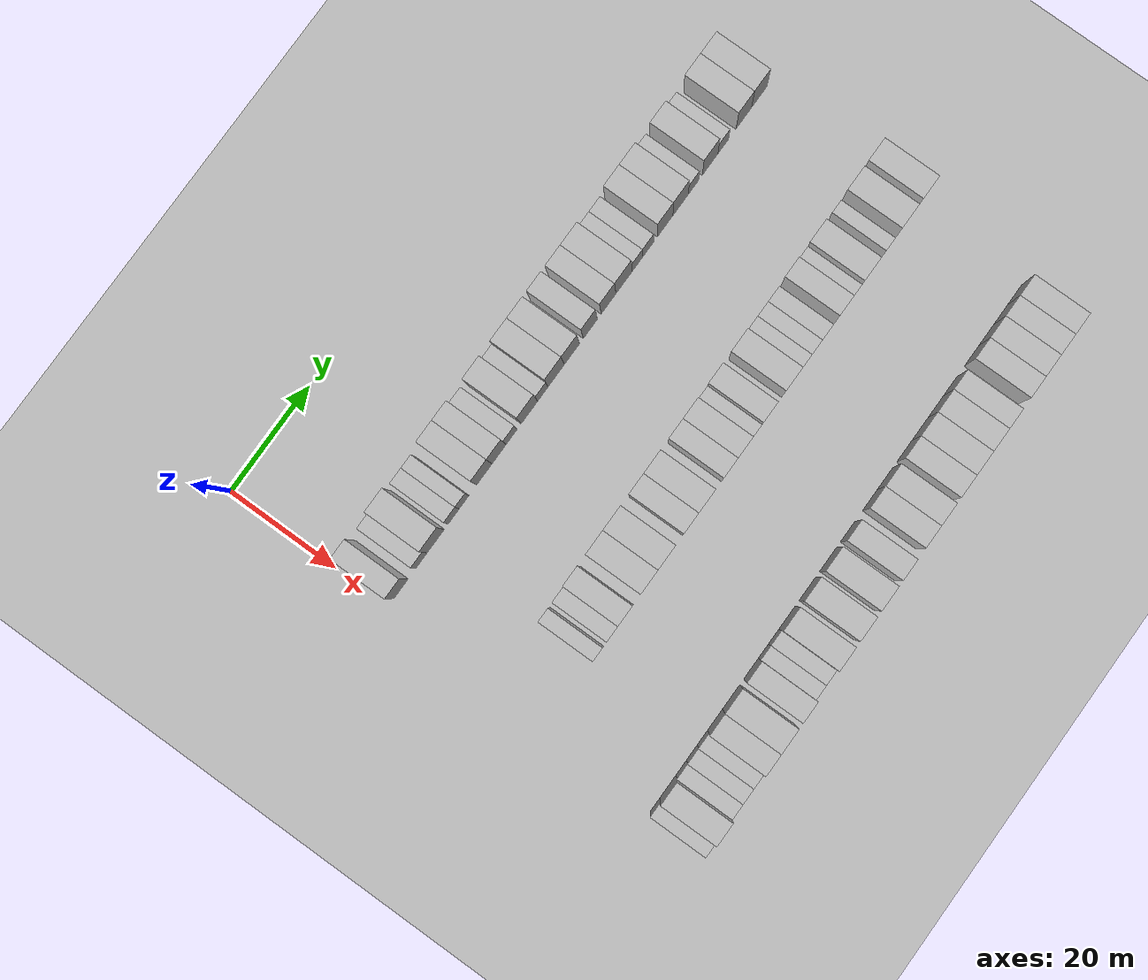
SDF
<sdf version="1.6">
 <world name="default">
  <include><name>ground_plane_1</name><uri>model://HANNAS_ground_plane</uri></include>
  <include>
   <name>ground_plane_2</name>
   <uri>model://HANNAS_ground_plane</uri>
   <pose>100 0 0  0 0 0</pose>
  </include>
  <model name="building_74">
   <static>1</static>
   <pose>25.0000 3.4079 0 0.000000 0.000000 0.000000</pose>
   <link name="link">
    <pose>0 0 4.50 0 0 0</pose>
    <collision name="collision"><geometry><box><size>10.0000 3.6142 9.0000</size></box></geometry></collision>
    <visual name="visual">
     <cast_shadows>0</cast_shadows>
     <geometry><box><size>10.0000 3.6142 9.0000</size></box></geometry>
     <material>
      <script>
       <uri>model://HANNAS_wall/materials/scripts</uri>
       <uri>model://HANNAS_wall/materials/textures</uri>
       <name>vrc/HANNAS_wall</name>
      </script>
     </material>
    </visual>
   </link>
  </model>
  <model name="building_75">
   <static>1</static>
   <pose>25.0000 8.6435 0 0.000000 0.000000 0.000000</pose>
   <link name="link">
    <pose>0 0 3.00 0 0 0</pose>
    <collision name="collision"><geometry><box><size>10.0000 2.8570 6.0000</size></box></geometry></collision>
    <visual name="visual">
     <cast_shadows>0</cast_shadows>
     <geometry><box><size>10.0000 2.8570 6.0000</size></box></geometry>
     <material>
      <script>
       <uri>model://HANNAS_wall/materials/scripts</uri>
       <uri>model://HANNAS_wall/materials/textures</uri>
       <name>vrc/HANNAS_wall</name>
      </script>
     </material>
    </visual>
   </link>
  </model>
  <model name="building_76">
   <static>1</static>
   <pose>25.0000 12.2676 0 0.000000 0.000000 0.000000</pose>
   <link name="link">
    <pose>0 0 4.50 0 0 0</pose>
    <collision name="collision"><geometry><box><size>10.0000 4.3912 9.0000</size></box></geometry></collision>
    <visual name="visual">
     <cast_shadows>0</cast_shadows>
     <geometry><box><size>10.0000 4.3912 9.0000</size></box></geometry>
     <material>
      <script>
       <uri>model://HANNAS_wall/materials/scripts</uri>
       <uri>model://HANNAS_wall/materials/textures</uri>
       <name>vrc/HANNAS_wall</name>
      </script>
     </material>
    </visual>
   </link>
  </model>
  <model name="building_77">
   <static>1</static>
   <pose>25.0000 16.8839 0 0.000000 0.000000 0.000000</pose>
   <link name="link">
    <pose>0 0 3.00 0 0 0</pose>
    <collision name="collision"><geometry><box><size>10.0000 2.8414 6.0000</size></box></geometry></collision>
    <visual name="visual">
     <cast_shadows>0</cast_shadows>
     <geometry><box><size>10.0000 2.8414 6.0000</size></box></geometry>
     <material>
      <script>
       <uri>model://HANNAS_wall/materials/scripts</uri>
       <uri>model://HANNAS_wall/materials/textures</uri>
       <name>vrc/HANNAS_wall</name>
      </script>
     </material>
    </visual>
   </link>
  </model>
  <model name="building_78">
   <static>1</static>
   <pose>25.0000 19.5484 0 0.000000 0.000000 0.000000</pose>
   <link name="link">
    <pose>0 0 3.00 0 0 0</pose>
    <collision name="collision"><geometry><box><size>10.0000 2.4876 6.0000</size></box></geometry></collision>
    <visual name="visual">
     <cast_shadows>0</cast_shadows>
     <geometry><box><size>10.0000 2.4876 6.0000</size></box></geometry>
     <material>
      <script>
       <uri>model://HANNAS_wall/materials/scripts</uri>
       <uri>model://HANNAS_wall/materials/textures</uri>
       <name>vrc/HANNAS_wall</name>
      </script>
     </material>
    </visual>
   </link>
  </model>
  <model name="building_79">
   <static>1</static>
   <pose>25.0000 24.7698 0 0.000000 0.000000 0.000000</pose>
   <link name="link">
    <pose>0 0 4.50 0 0 0</pose>
    <collision name="collision"><geometry><box><size>10.0000 3.9552 9.0000</size></box></geometry></collision>
    <visual name="visual">
     <cast_shadows>0</cast_shadows>
     <geometry><box><size>10.0000 3.9552 9.0000</size></box></geometry>
     <material>
      <script>
       <uri>model://HANNAS_wall/materials/scripts</uri>
       <uri>model://HANNAS_wall/materials/textures</uri>
       <name>vrc/HANNAS_wall</name>
      </script>
     </material>
    </visual>
   </link>
  </model>
  <model name="building_80">
   <static>1</static>
   <pose>25.0000 28.5540 0 0.000000 0.000000 0.000000</pose>
   <link name="link">
    <pose>0 0 4.50 0 0 0</pose>
    <collision name="collision"><geometry><box><size>10.0000 3.6131 9.0000</size></box></geometry></collision>
    <visual name="visual">
     <cast_shadows>0</cast_shadows>
     <geometry><box><size>10.0000 3.6131 9.0000</size></box></geometry>
     <material>
      <script>
       <uri>model://HANNAS_wall/materials/scripts</uri>
       <uri>model://HANNAS_wall/materials/textures</uri>
       <name>vrc/HANNAS_wall</name>
      </script>
     </material>
    </visual>
   </link>
  </model>
  <model name="building_81">
   <static>1</static>
   <pose>25.0000 31.8197 0 0.000000 0.000000 0.000000</pose>
   <link name="link">
    <pose>0 0 3.00 0 0 0</pose>
    <collision name="collision"><geometry><box><size>10.0000 2.9183 6.0000</size></box></geometry></collision>
    <visual name="visual">
     <cast_shadows>0</cast_shadows>
     <geometry><box><size>10.0000 2.9183 6.0000</size></box></geometry>
     <material>
      <script>
       <uri>model://HANNAS_wall/materials/scripts</uri>
       <uri>model://HANNAS_wall/materials/textures</uri>
       <name>vrc/HANNAS_wall</name>
      </script>
     </material>
    </visual>
   </link>
  </model>
  <model name="building_82">
   <static>1</static>
   <pose>25.0000 36.4141 0 0.000000 0.000000 0.000000</pose>
   <link name="link">
    <pose>0 0 4.50 0 0 0</pose>
    <collision name="collision"><geometry><box><size>10.0000 4.2705 9.0000</size></box></geometry></collision>
    <visual name="visual">
     <cast_shadows>0</cast_shadows>
     <geometry><box><size>10.0000 4.2705 9.0000</size></box></geometry>
     <material>
      <script>
       <uri>model://HANNAS_wall/materials/scripts</uri>
       <uri>model://HANNAS_wall/materials/textures</uri>
       <name>vrc/HANNAS_wall</name>
      </script>
     </material>
    </visual>
   </link>
  </model>
  <model name="building_83">
   <static>1</static>
   <pose>25.0000 39.9075 0 0.000000 0.000000 0.000000</pose>
   <link name="link">
    <pose>0 0 3.00 0 0 0</pose>
    <collision name="collision"><geometry><box><size>10.0000 2.7164 6.0000</size></box></geometry></collision>
    <visual name="visual">
     <cast_shadows>0</cast_shadows>
     <geometry><box><size>10.0000 2.7164 6.0000</size></box></geometry>
     <material>
      <script>
       <uri>model://HANNAS_wall/materials/scripts</uri>
       <uri>model://HANNAS_wall/materials/textures</uri>
       <name>vrc/HANNAS_wall</name>
      </script>
     </material>
    </visual>
   </link>
  </model>
  <model name="building_84">
   <static>1</static>
   <pose>25.0000 43.3793 0 0.000000 0.000000 0.000000</pose>
   <link name="link">
    <pose>0 0 4.50 0 0 0</pose>
    <collision name="collision"><geometry><box><size>10.0000 4.2273 9.0000</size></box></geometry></collision>
    <visual name="visual">
     <cast_shadows>0</cast_shadows>
     <geometry><box><size>10.0000 4.2273 9.0000</size></box></geometry>
     <material>
      <script>
       <uri>model://HANNAS_wall/materials/scripts</uri>
       <uri>model://HANNAS_wall/materials/textures</uri>
       <name>vrc/HANNAS_wall</name>
      </script>
     </material>
    </visual>
   </link>
  </model>
  <model name="building_85">
   <static>1</static>
   <pose>25.0000 47.4827 0 0.000000 0.000000 0.000000</pose>
   <link name="link">
    <pose>0 0 4.50 0 0 0</pose>
    <collision name="collision"><geometry><box><size>10.0000 3.9795 9.0000</size></box></geometry></collision>
    <visual name="visual">
     <cast_shadows>0</cast_shadows>
     <geometry><box><size>10.0000 3.9795 9.0000</size></box></geometry>
     <material>
      <script>
       <uri>model://HANNAS_wall/materials/scripts</uri>
       <uri>model://HANNAS_wall/materials/textures</uri>
       <name>vrc/HANNAS_wall</name>
      </script>
     </material>
    </visual>
   </link>
  </model>
  <model name="building_86">
   <static>1</static>
   <pose>25.0000 52.3160 0 0.000000 0.000000 0.000000</pose>
   <link name="link">
    <pose>0 0 4.50 0 0 0</pose>
    <collision name="collision"><geometry><box><size>10.0000 3.6870 9.0000</size></box></geometry></collision>
    <visual name="visual">
     <cast_shadows>0</cast_shadows>
     <geometry><box><size>10.0000 3.6870 9.0000</size></box></geometry>
     <material>
      <script>
       <uri>model://HANNAS_wall/materials/scripts</uri>
       <uri>model://HANNAS_wall/materials/textures</uri>
       <name>vrc/HANNAS_wall</name>
      </script>
     </material>
    </visual>
   </link>
  </model>
  <model name="building_87">
   <static>1</static>
   <pose>25.0000 57.0946 0 0.000000 0.000000 0.000000</pose>
   <link name="link">
    <pose>0 0 4.50 0 0 0</pose>
    <collision name="collision"><geometry><box><size>10.0000 3.8702 9.0000</size></box></geometry></collision>
    <visual name="visual">
     <cast_shadows>0</cast_shadows>
     <geometry><box><size>10.0000 3.8702 9.0000</size></box></geometry>
     <material>
      <script>
       <uri>model://HANNAS_wall/materials/scripts</uri>
       <uri>model://HANNAS_wall/materials/textures</uri>
       <name>vrc/HANNAS_wall</name>
      </script>
     </material>
    </visual>
   </link>
  </model>
  <model name="building_88">
   <static>1</static>
   <pose>25.0000 61.1668 0 0.000000 0.000000 0.000000</pose>
   <link name="link">
    <pose>0 0 4.50 0 0 0</pose>
    <collision name="collision"><geometry><box><size>10.0000 4.2742 9.0000</size></box></geometry></collision>
    <visual name="visual">
     <cast_shadows>0</cast_shadows>
     <geometry><box><size>10.0000 4.2742 9.0000</size></box></geometry>
     <material>
      <script>
       <uri>model://HANNAS_wall/materials/scripts</uri>
       <uri>model://HANNAS_wall/materials/textures</uri>
       <name>vrc/HANNAS_wall</name>
      </script>
     </material>
    </visual>
   </link>
  </model>
  <model name="building_89">
   <static>1</static>
   <pose>25.0000 64.7214 0 0.000000 0.000000 0.000000</pose>
   <link name="link">
    <pose>0 0 3.00 0 0 0</pose>
    <collision name="collision"><geometry><box><size>10.0000 2.8349 6.0000</size></box></geometry></collision>
    <visual name="visual">
     <cast_shadows>0</cast_shadows>
     <geometry><box><size>10.0000 2.8349 6.0000</size></box></geometry>
     <material>
      <script>
       <uri>model://HANNAS_wall/materials/scripts</uri>
       <uri>model://HANNAS_wall/materials/textures</uri>
       <name>vrc/HANNAS_wall</name>
      </script>
     </material>
    </visual>
   </link>
  </model>
  <model name="building_90">
   <static>1</static>
   <pose>25.0000 67.5735 0 0.000000 0.000000 0.000000</pose>
   <link name="link">
    <pose>0 0 3.00 0 0 0</pose>
    <collision name="collision"><geometry><box><size>10.0000 2.8693 6.0000</size></box></geometry></collision>
    <visual name="visual">
     <cast_shadows>0</cast_shadows>
     <geometry><box><size>10.0000 2.8693 6.0000</size></box></geometry>
     <material>
      <script>
       <uri>model://HANNAS_wall/materials/scripts</uri>
       <uri>model://HANNAS_wall/materials/textures</uri>
       <name>vrc/HANNAS_wall</name>
      </script>
     </material>
    </visual>
   </link>
  </model>
  <model name="building_91">
   <static>1</static>
   <pose>25.0000 72.0431 0 0.000000 0.000000 0.000000</pose>
   <link name="link">
    <pose>0 0 4.50 0 0 0</pose>
    <collision name="collision"><geometry><box><size>10.0000 4.0700 9.0000</size></box></geometry></collision>
    <visual name="visual">
     <cast_shadows>0</cast_shadows>
     <geometry><box><size>10.0000 4.0700 9.0000</size></box></geometry>
     <material>
      <script>
       <uri>model://HANNAS_wall/materials/scripts</uri>
       <uri>model://HANNAS_wall/materials/textures</uri>
       <name>vrc/HANNAS_wall</name>
      </script>
     </material>
    </visual>
   </link>
  </model>
  <model name="building_92">
   <static>1</static>
   <pose>25.0000 76.1392 0 0.000000 0.000000 0.000000</pose>
   <link name="link">
    <pose>0 0 4.50 0 0 0</pose>
    <collision name="collision"><geometry><box><size>10.0000 4.1222 9.0000</size></box></geometry></collision>
    <visual name="visual">
     <cast_shadows>0</cast_shadows>
     <geometry><box><size>10.0000 4.1222 9.0000</size></box></geometry>
     <material>
      <script>
       <uri>model://HANNAS_wall/materials/scripts</uri>
       <uri>model://HANNAS_wall/materials/textures</uri>
       <name>vrc/HANNAS_wall</name>
      </script>
     </material>
    </visual>
   </link>
  </model>
  <model name="building_93">
   <static>1</static>
   <pose>25.0000 79.5651 0 0.000000 0.000000 0.000000</pose>
   <link name="link">
    <pose>0 0 3.00 0 0 0</pose>
    <collision name="collision"><geometry><box><size>10.0000 2.7295 6.0000</size></box></geometry></collision>
    <visual name="visual">
     <cast_shadows>0</cast_shadows>
     <geometry><box><size>10.0000 2.7295 6.0000</size></box></geometry>
     <material>
      <script>
       <uri>model://HANNAS_wall/materials/scripts</uri>
       <uri>model://HANNAS_wall/materials/textures</uri>
       <name>vrc/HANNAS_wall</name>
      </script>
     </material>
    </visual>
   </link>
  </model>
  <model name="building_94">
   <static>1</static>
   <pose>25.0000 83.9969 0 0.000000 0.000000 0.000000</pose>
   <link name="link">
    <pose>0 0 4.50 0 0 0</pose>
    <collision name="collision"><geometry><box><size>10.0000 4.1342 9.0000</size></box></geometry></collision>
    <visual name="visual">
     <cast_shadows>0</cast_shadows>
     <geometry><box><size>10.0000 4.1342 9.0000</size></box></geometry>
     <material>
      <script>
       <uri>model://HANNAS_wall/materials/scripts</uri>
       <uri>model://HANNAS_wall/materials/textures</uri>
       <name>vrc/HANNAS_wall</name>
      </script>
     </material>
    </visual>
   </link>
  </model>
  <model name="building_95">
   <static>1</static>
   <pose>25.0000 87.5025 0 0.000000 0.000000 0.000000</pose>
   <link name="link">
    <pose>0 0 3.00 0 0 0</pose>
    <collision name="collision"><geometry><box><size>10.0000 2.8768 6.0000</size></box></geometry></collision>
    <visual name="visual">
     <cast_shadows>0</cast_shadows>
     <geometry><box><size>10.0000 2.8768 6.0000</size></box></geometry>
     <material>
      <script>
       <uri>model://HANNAS_wall/materials/scripts</uri>
       <uri>model://HANNAS_wall/materials/textures</uri>
       <name>vrc/HANNAS_wall</name>
      </script>
     </material>
    </visual>
   </link>
  </model>
  <model name="building_96">
   <static>1</static>
   <pose>25.0000 93.0082 0 0.000000 0.000000 0.000000</pose>
   <link name="link">
    <pose>0 0 4.50 0 0 0</pose>
    <collision name="collision"><geometry><box><size>10.0000 4.1346 9.0000</size></box></geometry></collision>
    <visual name="visual">
     <cast_shadows>0</cast_shadows>
     <geometry><box><size>10.0000 4.1346 9.0000</size></box></geometry>
     <material>
      <script>
       <uri>model://HANNAS_wall/materials/scripts</uri>
       <uri>model://HANNAS_wall/materials/textures</uri>
       <name>vrc/HANNAS_wall</name>
      </script>
     </material>
    </visual>
   </link>
  </model>
  <model name="building_97">
   <static>1</static>
   <pose>25.0000 97.1635 0 0.000000 0.000000 0.000000</pose>
   <link name="link">
    <pose>0 0 4.50 0 0 0</pose>
    <collision name="collision"><geometry><box><size>10.0000 4.1760 9.0000</size></box></geometry></collision>
    <visual name="visual">
     <cast_shadows>0</cast_shadows>
     <geometry><box><size>10.0000 4.1760 9.0000</size></box></geometry>
     <material>
      <script>
       <uri>model://HANNAS_wall/materials/scripts</uri>
       <uri>model://HANNAS_wall/materials/textures</uri>
       <name>vrc/HANNAS_wall</name>
      </script>
     </material>
    </visual>
   </link>
  </model>
  <model name="building_213">
   <static>1</static>
   <pose>55.0000 13.0352 0 0.000000 0.000000 0.000000</pose>
   <link name="link">
    <pose>0 0 3.00 0 0 0</pose>
    <collision name="collision"><geometry><box><size>10.0000 2.5102 6.0000</size></box></geometry></collision>
    <visual name="visual">
     <cast_shadows>0</cast_shadows>
     <geometry><box><size>10.0000 2.5102 6.0000</size></box></geometry>
     <material>
      <script>
       <uri>model://HANNAS_wall/materials/scripts</uri>
       <uri>model://HANNAS_wall/materials/textures</uri>
       <name>vrc/HANNAS_wall</name>
      </script>
     </material>
    </visual>
   </link>
  </model>
  <model name="building_214">
   <static>1</static>
   <pose>55.0000 16.7677 0 0.000000 0.000000 0.000000</pose>
   <link name="link">
    <pose>0 0 3.00 0 0 0</pose>
    <collision name="collision"><geometry><box><size>10.0000 2.9548 6.0000</size></box></geometry></collision>
    <visual name="visual">
     <cast_shadows>0</cast_shadows>
     <geometry><box><size>10.0000 2.9548 6.0000</size></box></geometry>
     <material>
      <script>
       <uri>model://HANNAS_wall/materials/scripts</uri>
       <uri>model://HANNAS_wall/materials/textures</uri>
       <name>vrc/HANNAS_wall</name>
      </script>
     </material>
    </visual>
   </link>
  </model>
  <model name="building_215">
   <static>1</static>
   <pose>55.0000 20.0991 0 0.000000 0.000000 0.000000</pose>
   <link name="link">
    <pose>0 0 4.50 0 0 0</pose>
    <collision name="collision"><geometry><box><size>10.0000 3.7081 9.0000</size></box></geometry></collision>
    <visual name="visual">
     <cast_shadows>0</cast_shadows>
     <geometry><box><size>10.0000 3.7081 9.0000</size></box></geometry>
     <material>
      <script>
       <uri>model://HANNAS_wall/materials/scripts</uri>
       <uri>model://HANNAS_wall/materials/textures</uri>
       <name>vrc/HANNAS_wall</name>
      </script>
     </material>
    </visual>
   </link>
  </model>
  <model name="building_216">
   <static>1</static>
   <pose>55.0000 26.1412 0 0.000000 0.000000 0.000000</pose>
   <link name="link">
    <pose>0 0 4.50 0 0 0</pose>
    <collision name="collision"><geometry><box><size>10.0000 4.3760 9.0000</size></box></geometry></collision>
    <visual name="visual">
     <cast_shadows>0</cast_shadows>
     <geometry><box><size>10.0000 4.3760 9.0000</size></box></geometry>
     <material>
      <script>
       <uri>model://HANNAS_wall/materials/scripts</uri>
       <uri>model://HANNAS_wall/materials/textures</uri>
       <name>vrc/HANNAS_wall</name>
      </script>
     </material>
    </visual>
   </link>
  </model>
  <model name="building_217">
   <static>1</static>
   <pose>55.0000 30.5734 0 0.000000 0.000000 0.000000</pose>
   <link name="link">
    <pose>0 0 4.50 0 0 0</pose>
    <collision name="collision"><geometry><box><size>10.0000 4.4885 9.0000</size></box></geometry></collision>
    <visual name="visual">
     <cast_shadows>0</cast_shadows>
     <geometry><box><size>10.0000 4.4885 9.0000</size></box></geometry>
     <material>
      <script>
       <uri>model://HANNAS_wall/materials/scripts</uri>
       <uri>model://HANNAS_wall/materials/textures</uri>
       <name>vrc/HANNAS_wall</name>
      </script>
     </material>
    </visual>
   </link>
  </model>
  <model name="building_218">
   <static>1</static>
   <pose>55.0000 36.7145 0 0.000000 0.000000 0.000000</pose>
   <link name="link">
    <pose>0 0 4.50 0 0 0</pose>
    <collision name="collision"><geometry><box><size>10.0000 3.7936 9.0000</size></box></geometry></collision>
    <visual name="visual">
     <cast_shadows>0</cast_shadows>
     <geometry><box><size>10.0000 3.7936 9.0000</size></box></geometry>
     <material>
      <script>
       <uri>model://HANNAS_wall/materials/scripts</uri>
       <uri>model://HANNAS_wall/materials/textures</uri>
       <name>vrc/HANNAS_wall</name>
      </script>
     </material>
    </visual>
   </link>
  </model>
  <model name="building_219">
   <static>1</static>
   <pose>55.0000 40.7688 0 0.000000 0.000000 0.000000</pose>
   <link name="link">
    <pose>0 0 4.50 0 0 0</pose>
    <collision name="collision"><geometry><box><size>10.0000 4.3149 9.0000</size></box></geometry></collision>
    <visual name="visual">
     <cast_shadows>0</cast_shadows>
     <geometry><box><size>10.0000 4.3149 9.0000</size></box></geometry>
     <material>
      <script>
       <uri>model://HANNAS_wall/materials/scripts</uri>
       <uri>model://HANNAS_wall/materials/textures</uri>
       <name>vrc/HANNAS_wall</name>
      </script>
     </material>
    </visual>
   </link>
  </model>
  <model name="building_220">
   <static>1</static>
   <pose>55.0000 46.7539 0 0.000000 0.000000 0.000000</pose>
   <link name="link">
    <pose>0 0 4.50 0 0 0</pose>
    <collision name="collision"><geometry><box><size>10.0000 3.6553 9.0000</size></box></geometry></collision>
    <visual name="visual">
     <cast_shadows>0</cast_shadows>
     <geometry><box><size>10.0000 3.6553 9.0000</size></box></geometry>
     <material>
      <script>
       <uri>model://HANNAS_wall/materials/scripts</uri>
       <uri>model://HANNAS_wall/materials/textures</uri>
       <name>vrc/HANNAS_wall</name>
      </script>
     </material>
    </visual>
   </link>
  </model>
  <model name="building_221">
   <static>1</static>
   <pose>55.0000 50.5174 0 0.000000 0.000000 0.000000</pose>
   <link name="link">
    <pose>0 0 4.50 0 0 0</pose>
    <collision name="collision"><geometry><box><size>10.0000 3.8717 9.0000</size></box></geometry></collision>
    <visual name="visual">
     <cast_shadows>0</cast_shadows>
     <geometry><box><size>10.0000 3.8717 9.0000</size></box></geometry>
     <material>
      <script>
       <uri>model://HANNAS_wall/materials/scripts</uri>
       <uri>model://HANNAS_wall/materials/textures</uri>
       <name>vrc/HANNAS_wall</name>
      </script>
     </material>
    </visual>
   </link>
  </model>
  <model name="building_222">
   <static>1</static>
   <pose>55.0000 53.7339 0 0.000000 0.000000 0.000000</pose>
   <link name="link">
    <pose>0 0 3.00 0 0 0</pose>
    <collision name="collision"><geometry><box><size>10.0000 2.5614 6.0000</size></box></geometry></collision>
    <visual name="visual">
     <cast_shadows>0</cast_shadows>
     <geometry><box><size>10.0000 2.5614 6.0000</size></box></geometry>
     <material>
      <script>
       <uri>model://HANNAS_wall/materials/scripts</uri>
       <uri>model://HANNAS_wall/materials/textures</uri>
       <name>vrc/HANNAS_wall</name>
      </script>
     </material>
    </visual>
   </link>
  </model>
  <model name="building_223">
   <static>1</static>
   <pose>55.0000 56.9179 0 0.000000 0.000000 0.000000</pose>
   <link name="link">
    <pose>0 0 4.50 0 0 0</pose>
    <collision name="collision"><geometry><box><size>10.0000 3.8065 9.0000</size></box></geometry></collision>
    <visual name="visual">
     <cast_shadows>0</cast_shadows>
     <geometry><box><size>10.0000 3.8065 9.0000</size></box></geometry>
     <material>
      <script>
       <uri>model://HANNAS_wall/materials/scripts</uri>
       <uri>model://HANNAS_wall/materials/textures</uri>
       <name>vrc/HANNAS_wall</name>
      </script>
     </material>
    </visual>
   </link>
  </model>
  <model name="building_224">
   <static>1</static>
   <pose>55.0000 62.9878 0 0.000000 0.000000 0.000000</pose>
   <link name="link">
    <pose>0 0 4.50 0 0 0</pose>
    <collision name="collision"><geometry><box><size>10.0000 4.3334 9.0000</size></box></geometry></collision>
    <visual name="visual">
     <cast_shadows>0</cast_shadows>
     <geometry><box><size>10.0000 4.3334 9.0000</size></box></geometry>
     <material>
      <script>
       <uri>model://HANNAS_wall/materials/scripts</uri>
       <uri>model://HANNAS_wall/materials/textures</uri>
       <name>vrc/HANNAS_wall</name>
      </script>
     </material>
    </visual>
   </link>
  </model>
  <model name="building_225">
   <static>1</static>
   <pose>55.0000 66.5784 0 0.000000 0.000000 0.000000</pose>
   <link name="link">
    <pose>0 0 3.00 0 0 0</pose>
    <collision name="collision"><geometry><box><size>10.0000 2.8479 6.0000</size></box></geometry></collision>
    <visual name="visual">
     <cast_shadows>0</cast_shadows>
     <geometry><box><size>10.0000 2.8479 6.0000</size></box></geometry>
     <material>
      <script>
       <uri>model://HANNAS_wall/materials/scripts</uri>
       <uri>model://HANNAS_wall/materials/textures</uri>
       <name>vrc/HANNAS_wall</name>
      </script>
     </material>
    </visual>
   </link>
  </model>
  <model name="building_226">
   <static>1</static>
   <pose>55.0000 69.3646 0 0.000000 0.000000 0.000000</pose>
   <link name="link">
    <pose>0 0 3.00 0 0 0</pose>
    <collision name="collision"><geometry><box><size>10.0000 2.7244 6.0000</size></box></geometry></collision>
    <visual name="visual">
     <cast_shadows>0</cast_shadows>
     <geometry><box><size>10.0000 2.7244 6.0000</size></box></geometry>
     <material>
      <script>
       <uri>model://HANNAS_wall/materials/scripts</uri>
       <uri>model://HANNAS_wall/materials/textures</uri>
       <name>vrc/HANNAS_wall</name>
      </script>
     </material>
    </visual>
   </link>
  </model>
  <model name="building_227">
   <static>1</static>
   <pose>55.0000 72.1781 0 0.000000 0.000000 0.000000</pose>
   <link name="link">
    <pose>0 0 3.00 0 0 0</pose>
    <collision name="collision"><geometry><box><size>10.0000 2.9028 6.0000</size></box></geometry></collision>
    <visual name="visual">
     <cast_shadows>0</cast_shadows>
     <geometry><box><size>10.0000 2.9028 6.0000</size></box></geometry>
     <material>
      <script>
       <uri>model://HANNAS_wall/materials/scripts</uri>
       <uri>model://HANNAS_wall/materials/textures</uri>
       <name>vrc/HANNAS_wall</name>
      </script>
     </material>
    </visual>
   </link>
  </model>
  <model name="building_228">
   <static>1</static>
   <pose>55.0000 76.4902 0 0.000000 0.000000 0.000000</pose>
   <link name="link">
    <pose>0 0 4.50 0 0 0</pose>
    <collision name="collision"><geometry><box><size>10.0000 3.7214 9.0000</size></box></geometry></collision>
    <visual name="visual">
     <cast_shadows>0</cast_shadows>
     <geometry><box><size>10.0000 3.7214 9.0000</size></box></geometry>
     <material>
      <script>
       <uri>model://HANNAS_wall/materials/scripts</uri>
       <uri>model://HANNAS_wall/materials/textures</uri>
       <name>vrc/HANNAS_wall</name>
      </script>
     </material>
    </visual>
   </link>
  </model>
  <model name="building_229">
   <static>1</static>
   <pose>55.0000 79.7193 0 0.000000 0.000000 0.000000</pose>
   <link name="link">
    <pose>0 0 3.00 0 0 0</pose>
    <collision name="collision"><geometry><box><size>10.0000 2.7368 6.0000</size></box></geometry></collision>
    <visual name="visual">
     <cast_shadows>0</cast_shadows>
     <geometry><box><size>10.0000 2.7368 6.0000</size></box></geometry>
     <material>
      <script>
       <uri>model://HANNAS_wall/materials/scripts</uri>
       <uri>model://HANNAS_wall/materials/textures</uri>
       <name>vrc/HANNAS_wall</name>
      </script>
     </material>
    </visual>
   </link>
  </model>
  <model name="building_230">
   <static>1</static>
   <pose>55.0000 83.2669 0 0.000000 0.000000 0.000000</pose>
   <link name="link">
    <pose>0 0 4.50 0 0 0</pose>
    <collision name="collision"><geometry><box><size>10.0000 4.3584 9.0000</size></box></geometry></collision>
    <visual name="visual">
     <cast_shadows>0</cast_shadows>
     <geometry><box><size>10.0000 4.3584 9.0000</size></box></geometry>
     <material>
      <script>
       <uri>model://HANNAS_wall/materials/scripts</uri>
       <uri>model://HANNAS_wall/materials/textures</uri>
       <name>vrc/HANNAS_wall</name>
      </script>
     </material>
    </visual>
   </link>
  </model>
  <model name="building_231">
   <static>1</static>
   <pose>55.0000 88.6529 0 0.000000 0.000000 0.000000</pose>
   <link name="link">
    <pose>0 0 3.00 0 0 0</pose>
    <collision name="collision"><geometry><box><size>10.0000 2.4134 6.0000</size></box></geometry></collision>
    <visual name="visual">
     <cast_shadows>0</cast_shadows>
     <geometry><box><size>10.0000 2.4134 6.0000</size></box></geometry>
     <material>
      <script>
       <uri>model://HANNAS_wall/materials/scripts</uri>
       <uri>model://HANNAS_wall/materials/textures</uri>
       <name>vrc/HANNAS_wall</name>
      </script>
     </material>
    </visual>
   </link>
  </model>
  <model name="building_232">
   <static>1</static>
   <pose>55.0000 93.1094 0 0.000000 0.000000 0.000000</pose>
   <link name="link">
    <pose>0 0 4.50 0 0 0</pose>
    <collision name="collision"><geometry><box><size>10.0000 4.4996 9.0000</size></box></geometry></collision>
    <visual name="visual">
     <cast_shadows>0</cast_shadows>
     <geometry><box><size>10.0000 4.4996 9.0000</size></box></geometry>
     <material>
      <script>
       <uri>model://HANNAS_wall/materials/scripts</uri>
       <uri>model://HANNAS_wall/materials/textures</uri>
       <name>vrc/HANNAS_wall</name>
      </script>
     </material>
    </visual>
   </link>
  </model>
  <model name="building_233">
   <static>1</static>
   <pose>55.0000 98.5002 0 0.000000 0.000000 0.000000</pose>
   <link name="link">
    <pose>0 0 4.50 0 0 0</pose>
    <collision name="collision"><geometry><box><size>10.0000 4.2821 9.0000</size></box></geometry></collision>
    <visual name="visual">
     <cast_shadows>0</cast_shadows>
     <geometry><box><size>10.0000 4.2821 9.0000</size></box></geometry>
     <material>
      <script>
       <uri>model://HANNAS_wall/materials/scripts</uri>
       <uri>model://HANNAS_wall/materials/textures</uri>
       <name>vrc/HANNAS_wall</name>
      </script>
     </material>
    </visual>
   </link>
  </model>
  <model name="building_344">
   <static>1</static>
   <pose>85.0000 -0.2936 0 0.000000 0.000000 0.000000</pose>
   <link name="link">
    <pose>0 0 3.00 0 0 0</pose>
    <collision name="collision"><geometry><box><size>10.0000 2.5723 6.0000</size></box></geometry></collision>
    <visual name="visual">
     <cast_shadows>0</cast_shadows>
     <geometry><box><size>10.0000 2.5723 6.0000</size></box></geometry>
     <material>
      <script>
       <uri>model://HANNAS_wall/materials/scripts</uri>
       <uri>model://HANNAS_wall/materials/textures</uri>
       <name>vrc/HANNAS_wall</name>
      </script>
     </material>
    </visual>
   </link>
  </model>
  <model name="building_345">
   <static>1</static>
   <pose>85.0000 3.0533 0 0.000000 0.000000 0.000000</pose>
   <link name="link">
    <pose>0 0 4.50 0 0 0</pose>
    <collision name="collision"><geometry><box><size>10.0000 4.1216 9.0000</size></box></geometry></collision>
    <visual name="visual">
     <cast_shadows>0</cast_shadows>
     <geometry><box><size>10.0000 4.1216 9.0000</size></box></geometry>
     <material>
      <script>
       <uri>model://HANNAS_wall/materials/scripts</uri>
       <uri>model://HANNAS_wall/materials/textures</uri>
       <name>vrc/HANNAS_wall</name>
      </script>
     </material>
    </visual>
   </link>
  </model>
  <model name="building_346">
   <static>1</static>
   <pose>85.0000 6.4725 0 0.000000 0.000000 0.000000</pose>
   <link name="link">
    <pose>0 0 3.00 0 0 0</pose>
    <collision name="collision"><geometry><box><size>10.0000 2.7168 6.0000</size></box></geometry></collision>
    <visual name="visual">
     <cast_shadows>0</cast_shadows>
     <geometry><box><size>10.0000 2.7168 6.0000</size></box></geometry>
     <material>
      <script>
       <uri>model://HANNAS_wall/materials/scripts</uri>
       <uri>model://HANNAS_wall/materials/textures</uri>
       <name>vrc/HANNAS_wall</name>
      </script>
     </material>
    </visual>
   </link>
  </model>
  <model name="building_347">
   <static>1</static>
   <pose>85.0000 9.2035 0 0.000000 0.000000 0.000000</pose>
   <link name="link">
    <pose>0 0 3.00 0 0 0</pose>
    <collision name="collision"><geometry><box><size>10.0000 2.7452 6.0000</size></box></geometry></collision>
    <visual name="visual">
     <cast_shadows>0</cast_shadows>
     <geometry><box><size>10.0000 2.7452 6.0000</size></box></geometry>
     <material>
      <script>
       <uri>model://HANNAS_wall/materials/scripts</uri>
       <uri>model://HANNAS_wall/materials/textures</uri>
       <name>vrc/HANNAS_wall</name>
      </script>
     </material>
    </visual>
   </link>
  </model>
  <model name="building_348">
   <static>1</static>
   <pose>85.0000 11.9059 0 0.000000 0.000000 0.000000</pose>
   <link name="link">
    <pose>0 0 3.00 0 0 0</pose>
    <collision name="collision"><geometry><box><size>10.0000 2.6597 6.0000</size></box></geometry></collision>
    <visual name="visual">
     <cast_shadows>0</cast_shadows>
     <geometry><box><size>10.0000 2.6597 6.0000</size></box></geometry>
     <material>
      <script>
       <uri>model://HANNAS_wall/materials/scripts</uri>
       <uri>model://HANNAS_wall/materials/textures</uri>
       <name>vrc/HANNAS_wall</name>
      </script>
     </material>
    </visual>
   </link>
  </model>
  <model name="building_349">
   <static>1</static>
   <pose>85.0000 15.1716 0 0.000000 0.000000 0.000000</pose>
   <link name="link">
    <pose>0 0 4.50 0 0 0</pose>
    <collision name="collision"><geometry><box><size>10.0000 3.8717 9.0000</size></box></geometry></collision>
    <visual name="visual">
     <cast_shadows>0</cast_shadows>
     <geometry><box><size>10.0000 3.8717 9.0000</size></box></geometry>
     <material>
      <script>
       <uri>model://HANNAS_wall/materials/scripts</uri>
       <uri>model://HANNAS_wall/materials/textures</uri>
       <name>vrc/HANNAS_wall</name>
      </script>
     </material>
    </visual>
   </link>
  </model>
  <model name="building_350">
   <static>1</static>
   <pose>85.0000 19.3490 0 0.000000 0.000000 0.000000</pose>
   <link name="link">
    <pose>0 0 4.50 0 0 0</pose>
    <collision name="collision"><geometry><box><size>10.0000 4.4829 9.0000</size></box></geometry></collision>
    <visual name="visual">
     <cast_shadows>0</cast_shadows>
     <geometry><box><size>10.0000 4.4829 9.0000</size></box></geometry>
     <material>
      <script>
       <uri>model://HANNAS_wall/materials/scripts</uri>
       <uri>model://HANNAS_wall/materials/textures</uri>
       <name>vrc/HANNAS_wall</name>
      </script>
     </material>
    </visual>
   </link>
  </model>
  <model name="building_351">
   <static>1</static>
   <pose>85.0000 24.5042 0 0.000000 0.000000 0.000000</pose>
   <link name="link">
    <pose>0 0 4.50 0 0 0</pose>
    <collision name="collision"><geometry><box><size>10.0000 3.8277 9.0000</size></box></geometry></collision>
    <visual name="visual">
     <cast_shadows>0</cast_shadows>
     <geometry><box><size>10.0000 3.8277 9.0000</size></box></geometry>
     <material>
      <script>
       <uri>model://HANNAS_wall/materials/scripts</uri>
       <uri>model://HANNAS_wall/materials/textures</uri>
       <name>vrc/HANNAS_wall</name>
      </script>
     </material>
    </visual>
   </link>
  </model>
  <model name="building_352">
   <static>1</static>
   <pose>85.0000 27.7254 0 0.000000 0.000000 0.000000</pose>
   <link name="link">
    <pose>0 0 3.00 0 0 0</pose>
    <collision name="collision"><geometry><box><size>10.0000 2.6147 6.0000</size></box></geometry></collision>
    <visual name="visual">
     <cast_shadows>0</cast_shadows>
     <geometry><box><size>10.0000 2.6147 6.0000</size></box></geometry>
     <material>
      <script>
       <uri>model://HANNAS_wall/materials/scripts</uri>
       <uri>model://HANNAS_wall/materials/textures</uri>
       <name>vrc/HANNAS_wall</name>
      </script>
     </material>
    </visual>
   </link>
  </model>
  <model name="building_353">
   <static>1</static>
   <pose>85.0000 30.3985 0 0.000000 0.000000 0.000000</pose>
   <link name="link">
    <pose>0 0 3.00 0 0 0</pose>
    <collision name="collision"><geometry><box><size>10.0000 2.7315 6.0000</size></box></geometry></collision>
    <visual name="visual">
     <cast_shadows>0</cast_shadows>
     <geometry><box><size>10.0000 2.7315 6.0000</size></box></geometry>
     <material>
      <script>
       <uri>model://HANNAS_wall/materials/scripts</uri>
       <uri>model://HANNAS_wall/materials/textures</uri>
       <name>vrc/HANNAS_wall</name>
      </script>
     </material>
    </visual>
   </link>
  </model>
  <model name="building_354">
   <static>1</static>
   <pose>85.0000 33.9204 0 0.000000 0.000000 0.000000</pose>
   <link name="link">
    <pose>0 0 4.50 0 0 0</pose>
    <collision name="collision"><geometry><box><size>10.0000 4.3124 9.0000</size></box></geometry></collision>
    <visual name="visual">
     <cast_shadows>0</cast_shadows>
     <geometry><box><size>10.0000 4.3124 9.0000</size></box></geometry>
     <material>
      <script>
       <uri>model://HANNAS_wall/materials/scripts</uri>
       <uri>model://HANNAS_wall/materials/textures</uri>
       <name>vrc/HANNAS_wall</name>
      </script>
     </material>
    </visual>
   </link>
  </model>
  <model name="building_355">
   <static>1</static>
   <pose>85.0000 39.2820 0 0.000000 0.000000 0.000000</pose>
   <link name="link">
    <pose>0 0 4.50 0 0 0</pose>
    <collision name="collision"><geometry><box><size>10.0000 4.4108 9.0000</size></box></geometry></collision>
    <visual name="visual">
     <cast_shadows>0</cast_shadows>
     <geometry><box><size>10.0000 4.4108 9.0000</size></box></geometry>
     <material>
      <script>
       <uri>model://HANNAS_wall/materials/scripts</uri>
       <uri>model://HANNAS_wall/materials/textures</uri>
       <name>vrc/HANNAS_wall</name>
      </script>
     </material>
    </visual>
   </link>
  </model>
  <model name="building_356">
   <static>1</static>
   <pose>85.0000 44.7245 0 0.000000 0.000000 0.000000</pose>
   <link name="link">
    <pose>0 0 4.50 0 0 0</pose>
    <collision name="collision"><geometry><box><size>10.0000 4.4743 9.0000</size></box></geometry></collision>
    <visual name="visual">
     <cast_shadows>0</cast_shadows>
     <geometry><box><size>10.0000 4.4743 9.0000</size></box></geometry>
     <material>
      <script>
       <uri>model://HANNAS_wall/materials/scripts</uri>
       <uri>model://HANNAS_wall/materials/textures</uri>
       <name>vrc/HANNAS_wall</name>
      </script>
     </material>
    </visual>
   </link>
  </model>
  <model name="building_357">
   <static>1</static>
   <pose>85.0000 49.8810 0 0.000000 0.000000 0.000000</pose>
   <link name="link">
    <pose>0 0 4.50 0 0 0</pose>
    <collision name="collision"><geometry><box><size>10.0000 3.8387 9.0000</size></box></geometry></collision>
    <visual name="visual">
     <cast_shadows>0</cast_shadows>
     <geometry><box><size>10.0000 3.8387 9.0000</size></box></geometry>
     <material>
      <script>
       <uri>model://HANNAS_wall/materials/scripts</uri>
       <uri>model://HANNAS_wall/materials/textures</uri>
       <name>vrc/HANNAS_wall</name>
      </script>
     </material>
    </visual>
   </link>
  </model>
  <model name="building_358">
   <static>1</static>
   <pose>85.0000 55.8090 0 0.000000 0.000000 0.000000</pose>
   <link name="link">
    <pose>0 0 4.50 0 0 0</pose>
    <collision name="collision"><geometry><box><size>10.0000 4.0174 9.0000</size></box></geometry></collision>
    <visual name="visual">
     <cast_shadows>0</cast_shadows>
     <geometry><box><size>10.0000 4.0174 9.0000</size></box></geometry>
     <material>
      <script>
       <uri>model://HANNAS_wall/materials/scripts</uri>
       <uri>model://HANNAS_wall/materials/textures</uri>
       <name>vrc/HANNAS_wall</name>
      </script>
     </material>
    </visual>
   </link>
  </model>
  <model name="building_359">
   <static>1</static>
   <pose>85.0000 59.8655 0 0.000000 0.000000 0.000000</pose>
   <link name="link">
    <pose>0 0 4.50 0 0 0</pose>
    <collision name="collision"><geometry><box><size>10.0000 4.0956 9.0000</size></box></geometry></collision>
    <visual name="visual">
     <cast_shadows>0</cast_shadows>
     <geometry><box><size>10.0000 4.0956 9.0000</size></box></geometry>
     <material>
      <script>
       <uri>model://HANNAS_wall/materials/scripts</uri>
       <uri>model://HANNAS_wall/materials/textures</uri>
       <name>vrc/HANNAS_wall</name>
      </script>
     </material>
    </visual>
   </link>
  </model>
  <model name="building_360">
   <static>1</static>
   <pose>85.0000 64.9395 0 0.000000 0.000000 0.000000</pose>
   <link name="link">
    <pose>0 0 4.50 0 0 0</pose>
    <collision name="collision"><geometry><box><size>10.0000 4.0524 9.0000</size></box></geometry></collision>
    <visual name="visual">
     <cast_shadows>0</cast_shadows>
     <geometry><box><size>10.0000 4.0524 9.0000</size></box></geometry>
     <material>
      <script>
       <uri>model://HANNAS_wall/materials/scripts</uri>
       <uri>model://HANNAS_wall/materials/textures</uri>
       <name>vrc/HANNAS_wall</name>
      </script>
     </material>
    </visual>
   </link>
  </model>
  <model name="building_361">
   <static>1</static>
   <pose>85.0000 69.1403 0 0.000000 0.000000 0.000000</pose>
   <link name="link">
    <pose>0 0 4.50 0 0 0</pose>
    <collision name="collision"><geometry><box><size>10.0000 4.3491 9.0000</size></box></geometry></collision>
    <visual name="visual">
     <cast_shadows>0</cast_shadows>
     <geometry><box><size>10.0000 4.3491 9.0000</size></box></geometry>
     <material>
      <script>
       <uri>model://HANNAS_wall/materials/scripts</uri>
       <uri>model://HANNAS_wall/materials/textures</uri>
       <name>vrc/HANNAS_wall</name>
      </script>
     </material>
    </visual>
   </link>
  </model>
  <model name="building_362">
   <static>1</static>
   <pose>85.0000 73.3796 0 0.000000 0.000000 0.000000</pose>
   <link name="link">
    <pose>0 0 4.50 0 0 0</pose>
    <collision name="collision"><geometry><box><size>10.0000 4.1296 9.0000</size></box></geometry></collision>
    <visual name="visual">
     <cast_shadows>0</cast_shadows>
     <geometry><box><size>10.0000 4.1296 9.0000</size></box></geometry>
     <material>
      <script>
       <uri>model://HANNAS_wall/materials/scripts</uri>
       <uri>model://HANNAS_wall/materials/textures</uri>
       <name>vrc/HANNAS_wall</name>
      </script>
     </material>
    </visual>
   </link>
  </model>
  <model name="building_363">
   <static>1</static>
   <pose>85.0000 77.2514 0 0.000000 0.000000 0.000000</pose>
   <link name="link">
    <pose>0 0 4.50 0 0 0</pose>
    <collision name="collision"><geometry><box><size>10.0000 3.6140 9.0000</size></box></geometry></collision>
    <visual name="visual">
     <cast_shadows>0</cast_shadows>
     <geometry><box><size>10.0000 3.6140 9.0000</size></box></geometry>
     <material>
      <script>
       <uri>model://HANNAS_wall/materials/scripts</uri>
       <uri>model://HANNAS_wall/materials/textures</uri>
       <name>vrc/HANNAS_wall</name>
      </script>
     </material>
    </visual>
   </link>
  </model>
  <model name="building_364">
   <static>1</static>
   <pose>85.0000 83.0005 0 0.000000 0.000000 0.000000</pose>
   <link name="link">
    <pose>0 0 4.50 0 0 0</pose>
    <collision name="collision"><geometry><box><size>10.0000 3.8841 9.0000</size></box></geometry></collision>
    <visual name="visual">
     <cast_shadows>0</cast_shadows>
     <geometry><box><size>10.0000 3.8841 9.0000</size></box></geometry>
     <material>
      <script>
       <uri>model://HANNAS_wall/materials/scripts</uri>
       <uri>model://HANNAS_wall/materials/textures</uri>
       <name>vrc/HANNAS_wall</name>
      </script>
     </material>
    </visual>
   </link>
  </model>
  <model name="building_365">
   <static>1</static>
   <pose>85.0000 86.9503 0 0.000000 0.000000 0.000000</pose>
   <link name="link">
    <pose>0 0 4.50 0 0 0</pose>
    <collision name="collision"><geometry><box><size>10.0000 4.0155 9.0000</size></box></geometry></collision>
    <visual name="visual">
     <cast_shadows>0</cast_shadows>
     <geometry><box><size>10.0000 4.0155 9.0000</size></box></geometry>
     <material>
      <script>
       <uri>model://HANNAS_wall/materials/scripts</uri>
       <uri>model://HANNAS_wall/materials/textures</uri>
       <name>vrc/HANNAS_wall</name>
      </script>
     </material>
    </visual>
   </link>
  </model>
  <model name="building_366">
   <static>1</static>
   <pose>85.0000 90.8509 0 0.000000 0.000000 0.000000</pose>
   <link name="link">
    <pose>0 0 4.50 0 0 0</pose>
    <collision name="collision"><geometry><box><size>10.0000 3.7857 9.0000</size></box></geometry></collision>
    <visual name="visual">
     <cast_shadows>0</cast_shadows>
     <geometry><box><size>10.0000 3.7857 9.0000</size></box></geometry>
     <material>
      <script>
       <uri>model://HANNAS_wall/materials/scripts</uri>
       <uri>model://HANNAS_wall/materials/textures</uri>
       <name>vrc/HANNAS_wall</name>
      </script>
     </material>
    </visual>
   </link>
  </model>
  <model name="building_367">
   <static>1</static>
   <pose>85.0000 94.6765 0 0.000000 0.000000 0.000000</pose>
   <link name="link">
    <pose>0 0 4.50 0 0 0</pose>
    <collision name="collision"><geometry><box><size>10.0000 3.8656 9.0000</size></box></geometry></collision>
    <visual name="visual">
     <cast_shadows>0</cast_shadows>
     <geometry><box><size>10.0000 3.8656 9.0000</size></box></geometry>
     <material>
      <script>
       <uri>model://HANNAS_wall/materials/scripts</uri>
       <uri>model://HANNAS_wall/materials/textures</uri>
       <name>vrc/HANNAS_wall</name>
      </script>
     </material>
    </visual>
   </link>
  </model>
 </world>
</sdf>
